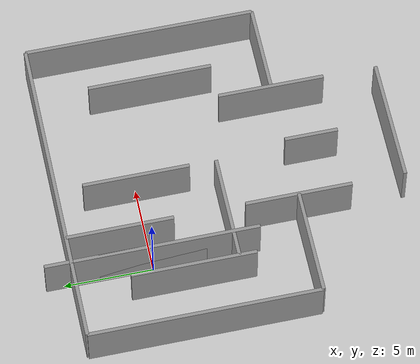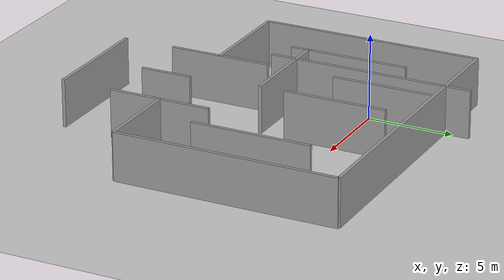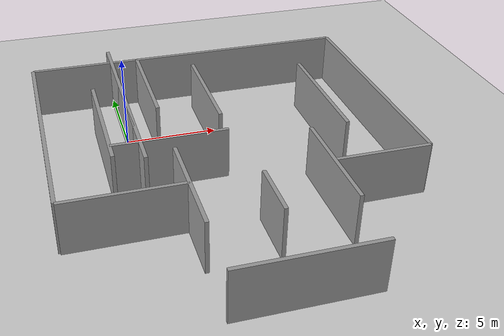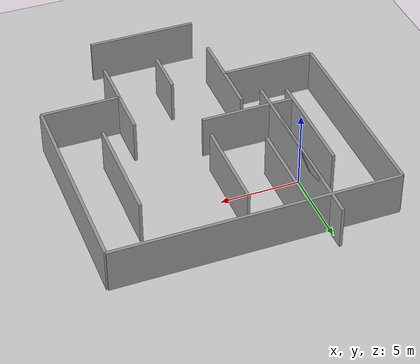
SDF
<sdf version="1.4">
 <world name="default">
  <light name="sun" type="directional">
   <pose>0 0 10 0 -0 -1.5708</pose>
   <diffuse>0.8 0.8 0.8 1</diffuse>
   <specular>0.2 0.2 0.2 1</specular>
   <attenuation>
    <range>1000</range>
    <constant>0.9</constant>
    <linear>0.01</linear>
    <quadratic>0.001</quadratic>
   </attenuation>
   <direction>-0.5 0.1 -0.9</direction>
  </light>
  <light name="user_point_light_0" type="point">
   <cast_shadows>0</cast_shadows>
   <pose>-8 -9 1 0 -0 -1.5708</pose>
   <diffuse>0.5 0.5 0.5 1</diffuse>
   <specular>0.1 0.1 0.1 1</specular>
   <attenuation>
    <range>20</range>
    <constant>0.5</constant>
    <linear>0.01</linear>
    <quadratic>0</quadratic>
   </attenuation>
   <direction>0 0 -1</direction>
  </light>
  <light name="user_point_light_1" type="point">
   <cast_shadows>0</cast_shadows>
   <pose>9 6 1 0 -0 -1.5708</pose>
   <diffuse>0.5 0.5 0.5 1</diffuse>
   <specular>0.1 0.1 0.1 1</specular>
   <attenuation>
    <range>20</range>
    <constant>0.5</constant>
    <linear>0.01</linear>
    <quadratic>0</quadratic>
   </attenuation>
   <direction>0 0 -1</direction>
  </light>
  <model name="ground_plane">
   <pose>0 0 0 0 0 -1.5708</pose>
   <static>1</static>
   <link name="link">
    <collision name="collision">
     <geometry><plane><normal>0 0 1</normal><size>100 100</size></plane></geometry>
     <surface><friction><ode><mu>100</mu><mu2>50</mu2></ode></friction></surface>
    </collision>
    <visual name="visual">
     <cast_shadows>0</cast_shadows>
     <geometry><plane><normal>0 0 1</normal><size>100 100</size></plane></geometry>
     <material>
      <script><uri>file://media/materials/scripts/gazebo.material</uri><name>Gazebo/Grey</name></script>
     </material>
    </visual>
    <velocity_decay><linear>0</linear><angular>0</angular></velocity_decay>
   </link>
  </model>
  <physics type="ode">
   <max_step_size>0.001</max_step_size>
   <real_time_factor>1</real_time_factor>
   <real_time_update_rate>1000</real_time_update_rate>
   <gravity>0 0 -9.8</gravity>
  </physics>
  <scene><ambient>0.4 0.4 0.4 1</ambient><background>0.7 0.7 0.7 1</background><shadows>1</shadows></scene>
  <spherical_coordinates>
   <surface_model>EARTH_WGS84</surface_model>
   <latitude_deg>0</latitude_deg>
   <longitude_deg>0</longitude_deg>
   <elevation>0</elevation>
   <heading_deg>0</heading_deg>
  </spherical_coordinates>
  <model name="grey_wall">
   <pose>4.5 0 0 0 -0 0</pose>
   <static>1</static>
   <link name="link">
    <pose>0 0 1.4 0 -0 -1.5708</pose>
    <collision name="collision"><geometry><box><size>6 0.2 2.8</size></box></geometry></collision>
    <visual name="visual">
     <cast_shadows>0</cast_shadows>
     <geometry><box><size>6 0.2 2.8</size></box></geometry>
     <material>
      <script>
       <uri>model://grey_wall/materials/scripts</uri>
       <uri>model://grey_wall/materials/textures</uri>
       <name>vrc/grey_wall</name>
      </script>
     </material>
    </visual>
    <velocity_decay><linear>0</linear><angular>0</angular></velocity_decay>
   </link>
  </model>
  <model name="grey_wall_0">
   <pose>-4.5 -2 0 0 -0 0</pose>
   <static>1</static>
   <link name="link">
    <pose>0 0 1.4 0 -0 -1.5708</pose>
    <collision name="collision"><geometry><box><size>13 0.2 2.8</size></box></geometry></collision>
    <visual name="visual">
     <cast_shadows>0</cast_shadows>
     <geometry><box><size>13 0.2 2.8</size></box></geometry>
     <material>
      <script>
       <uri>model://grey_wall/materials/scripts</uri>
       <uri>model://grey_wall/materials/textures</uri>
       <name>vrc/grey_wall</name>
      </script>
     </material>
    </visual>
    <velocity_decay><linear>0</linear><angular>0</angular></velocity_decay>
   </link>
  </model>
  <model name="grey_wall_1">
   <pose>1.5 -4.5 0 0 -0 1.5708</pose>
   <static>1</static>
   <link name="link">
    <pose>0 0 1.4 0 -0 -1.5708</pose>
    <collision name="collision"><geometry><box><size>6 0.2 2.8</size></box></geometry></collision>
    <visual name="visual">
     <cast_shadows>0</cast_shadows>
     <geometry><box><size>6 0.2 2.8</size></box></geometry>
     <material>
      <script>
       <uri>model://grey_wall/materials/scripts</uri>
       <uri>model://grey_wall/materials/textures</uri>
       <name>vrc/grey_wall3</name>
      </script>
     </material>
    </visual>
    <velocity_decay><linear>0</linear><angular>0</angular></velocity_decay>
   </link>
  </model>
  <model name="grey_wall_2">
   <pose>-1.5 -2 0 0 -0 0</pose>
   <static>1</static>
   <link name="link">
    <pose>0 0 1.4 0 -0 -1.5708</pose>
    <collision name="collision"><geometry><box><size>7 0.2 2.8</size></box></geometry></collision>
    <visual name="visual">
     <cast_shadows>0</cast_shadows>
     <geometry><box><size>7 0.2 2.8</size></box></geometry>
     <material>
      <script>
       <uri>model://grey_wall/materials/scripts</uri>
       <uri>model://grey_wall/materials/textures</uri>
       <name>vrc/grey_wall1</name>
      </script>
     </material>
    </visual>
    <velocity_decay><linear>0</linear><angular>0</angular></velocity_decay>
   </link>
  </model>
  <model name="grey_wall_3">
   <pose>4.5 4.5 0 0 -0 1.5708</pose>
   <static>1</static>
   <link name="link">
    <pose>0 0 1.4 0 -0 -1.5708</pose>
    <collision name="collision"><geometry><box><size>18 0.2 2.8</size></box></geometry></collision>
    <visual name="visual">
     <cast_shadows>0</cast_shadows>
     <geometry><box><size>18 0.2 2.8</size></box></geometry>
     <material>
      <script>
       <uri>model://grey_wall/materials/scripts</uri>
       <uri>model://grey_wall/materials/textures</uri>
       <name>vrc/grey_wall2</name>
      </script>
     </material>
    </visual>
    <velocity_decay><linear>0</linear><angular>0</angular></velocity_decay>
   </link>
  </model>
  <model name="grey_wall_5">
   <pose>1.5 1.5 0 0 -0 0</pose>
   <static>1</static>
   <link name="link">
    <pose>0 0 1.4 0 -0 -1.5708</pose>
    <collision name="collision"><geometry><box><size>6 0.2 2.8</size></box></geometry></collision>
    <visual name="visual">
     <cast_shadows>0</cast_shadows>
     <geometry><box><size>6 0.2 2.8</size></box></geometry>
     <material>
      <script>
       <uri>model://grey_wall/materials/scripts</uri>
       <uri>model://grey_wall/materials/textures</uri>
       <name>vrc/grey_wall5</name>
      </script>
     </material>
    </visual>
    <velocity_decay><linear>0</linear><angular>0</angular></velocity_decay>
   </link>
  </model>
  <model name="grey_wall_6">
   <static>1</static>
   <link name="link">
    <pose>0 0 1.4 0 -0 -1.5708</pose>
    <collision name="collision"><geometry><box><size>6 0.2 2.8</size></box></geometry></collision>
    <visual name="visual">
     <cast_shadows>0</cast_shadows>
     <geometry><box><size>6 0.2 2.8</size></box></geometry>
     <material>
      <script>
       <uri>model://grey_wall/materials/scripts</uri>
       <uri>model://grey_wall/materials/textures</uri>
       <name>vrc/grey_wall1</name>
      </script>
     </material>
    </visual>
    <velocity_decay><linear>0</linear><angular>0</angular></velocity_decay>
   </link>
  </model>
  <model name="grey_wall_7">
   <pose>10.5 -2 0 0 -0 0</pose>
   <static>1</static>
   <link name="link">
    <pose>0 0 1.4 0 -0 -1.5708</pose>
    <collision name="collision"><geometry><box><size>7 0.2 2.8</size></box></geometry></collision>
    <visual name="visual">
     <cast_shadows>0</cast_shadows>
     <geometry><box><size>7 0.2 2.8</size></box></geometry>
     <material>
      <script>
       <uri>model://grey_wall/materials/scripts</uri>
       <uri>model://grey_wall/materials/textures</uri>
       <name>vrc/grey_wall5</name>
      </script>
     </material>
    </visual>
    <velocity_decay><linear>0</linear><angular>0</angular></velocity_decay>
   </link>
  </model>
  <model name="grey_wall_8">
   <pose>13.5 -2 0 0 -0 0</pose>
   <static>1</static>
   <link name="link">
    <pose>0 0 1.4 0 -0 -1.5708</pose>
    <collision name="collision"><geometry><box><size>13 0.2 2.8</size></box></geometry></collision>
    <visual name="visual">
     <cast_shadows>0</cast_shadows>
     <geometry><box><size>13 0.2 2.8</size></box></geometry>
     <material>
      <script>
       <uri>model://grey_wall/materials/scripts</uri>
       <uri>model://grey_wall/materials/textures</uri>
       <name>vrc/grey_wall</name>
      </script>
     </material>
    </visual>
    <velocity_decay><linear>0</linear><angular>0</angular></velocity_decay>
   </link>
  </model>
  <model name="grey_wall_9">
   <static>1</static>
   <link name="link">
    <pose>0 0 1.4 0 -0 -1.5708</pose>
    <collision name="collision"><geometry><box><size>12 0.2 2.8</size></box></geometry></collision>
    <visual name="visual">
     <cast_shadows>0</cast_shadows>
     <geometry><box><size>12 0.2 2.8</size></box></geometry>
     <material>
      <script>
       <uri>model://grey_wall/materials/scripts</uri>
       <uri>model://grey_wall/materials/textures</uri>
       <name>vrc/grey_wall1</name>
      </script>
     </material>
    </visual>
    <velocity_decay><linear>0</linear><angular>0</angular></velocity_decay>
   </link>
  </model>
  <model name="grey_wall_10">
   <pose>-1.5 -8.5 0 0 -0 1.5708</pose>
   <static>1</static>
   <link name="link">
    <pose>0 0 1.4 0 -0 -1.5708</pose>
    <collision name="collision"><geometry><box><size>6 0.2 2.8</size></box></geometry></collision>
    <visual name="visual">
     <cast_shadows>0</cast_shadows>
     <geometry><box><size>6 0.2 2.8</size></box></geometry>
     <material>
      <script>
       <uri>model://grey_wall/materials/scripts</uri>
       <uri>model://grey_wall/materials/textures</uri>
       <name>vrc/grey_wall3</name>
      </script>
     </material>
    </visual>
    <velocity_decay><linear>0</linear><angular>0</angular></velocity_decay>
   </link>
  </model>
  <model name="grey_wall_11">
   <pose>1.5 -8.5 0 0 -0 0</pose>
   <static>1</static>
   <link name="link">
    <pose>0 0 1.4 0 -0 -1.5708</pose>
    <collision name="collision"><geometry><box><size>6 0.2 2.8</size></box></geometry></collision>
    <visual name="visual">
     <cast_shadows>0</cast_shadows>
     <geometry><box><size>6 0.2 2.8</size></box></geometry>
     <material>
      <script>
       <uri>model://grey_wall/materials/scripts</uri>
       <uri>model://grey_wall/materials/textures</uri>
       <name>vrc/grey_wall</name>
      </script>
     </material>
    </visual>
    <velocity_decay><linear>0</linear><angular>0</angular></velocity_decay>
   </link>
  </model>
  <model name="grey_wall_12">
   <pose>8.5 -8.5 0 0 -0 0</pose>
   <static>1</static>
   <link name="link">
    <pose>0 0 1.4 0 -0 -1.5708</pose>
    <collision name="collision"><geometry><box><size>6 0.2 2.8</size></box></geometry></collision>
    <visual name="visual">
     <cast_shadows>0</cast_shadows>
     <geometry><box><size>6 0.2 2.8</size></box></geometry>
     <material>
      <script>
       <uri>model://grey_wall/materials/scripts</uri>
       <uri>model://grey_wall/materials/textures</uri>
       <name>vrc/grey_wall</name>
      </script>
     </material>
    </visual>
    <velocity_decay><linear>0</linear><angular>0</angular></velocity_decay>
   </link>
  </model>
  <model name="grey_wall_13">
   <pose>11 -8.5 0 0 -0 1.5708</pose>
   <static>1</static>
   <link name="link">
    <pose>0 0 1.4 0 -0 -1.5708</pose>
    <collision name="collision"><geometry><box><size>5 0.2 2.8</size></box></geometry></collision>
    <visual name="visual">
     <cast_shadows>0</cast_shadows>
     <geometry><box><size>5 0.2 2.8</size></box></geometry>
     <material>
      <script>
       <uri>model://grey_wall/materials/scripts</uri>
       <uri>model://grey_wall/materials/textures</uri>
       <name>vrc/grey_wall3</name>
      </script>
     </material>
    </visual>
    <velocity_decay><linear>0</linear><angular>0</angular></velocity_decay>
   </link>
  </model>
  <model name="grey_wall_14">
   <pose>5 -14.5 0 0 -0 1.5708</pose>
   <static>1</static>
   <link name="link">
    <pose>0 0 1.4 0 -0 -1.5708</pose>
    <collision name="collision"><geometry><box><size>7 0.2 2.8</size></box></geometry></collision>
    <visual name="visual">
     <cast_shadows>0</cast_shadows>
     <geometry><box><size>7 0.2 2.8</size></box></geometry>
     <material>
      <script>
       <uri>model://grey_wall/materials/scripts</uri>
       <uri>model://grey_wall/materials/textures</uri>
       <name>vrc/grey_wall3</name>
      </script>
     </material>
    </visual>
    <velocity_decay><linear>0</linear><angular>0</angular></velocity_decay>
   </link>
  </model>
  <model name="grey_wall_15">
   <pose>5 -10 0 0 -0 0</pose>
   <static>1</static>
   <link name="link">
    <pose>0 0 1.4 0 -0 -1.5708</pose>
    <collision name="collision"><geometry><box><size>3 0.2 2.8</size></box></geometry></collision>
    <visual name="visual">
     <cast_shadows>0</cast_shadows>
     <geometry><box><size>3 0.2 2.8</size></box></geometry>
     <material>
      <script>
       <uri>model://grey_wall/materials/scripts</uri>
       <uri>model://grey_wall/materials/textures</uri>
       <name>vrc/grey_wall</name>
      </script>
     </material>
    </visual>
    <velocity_decay><linear>0</linear><angular>0</angular></velocity_decay>
   </link>
  </model>
 </world>
</sdf>
